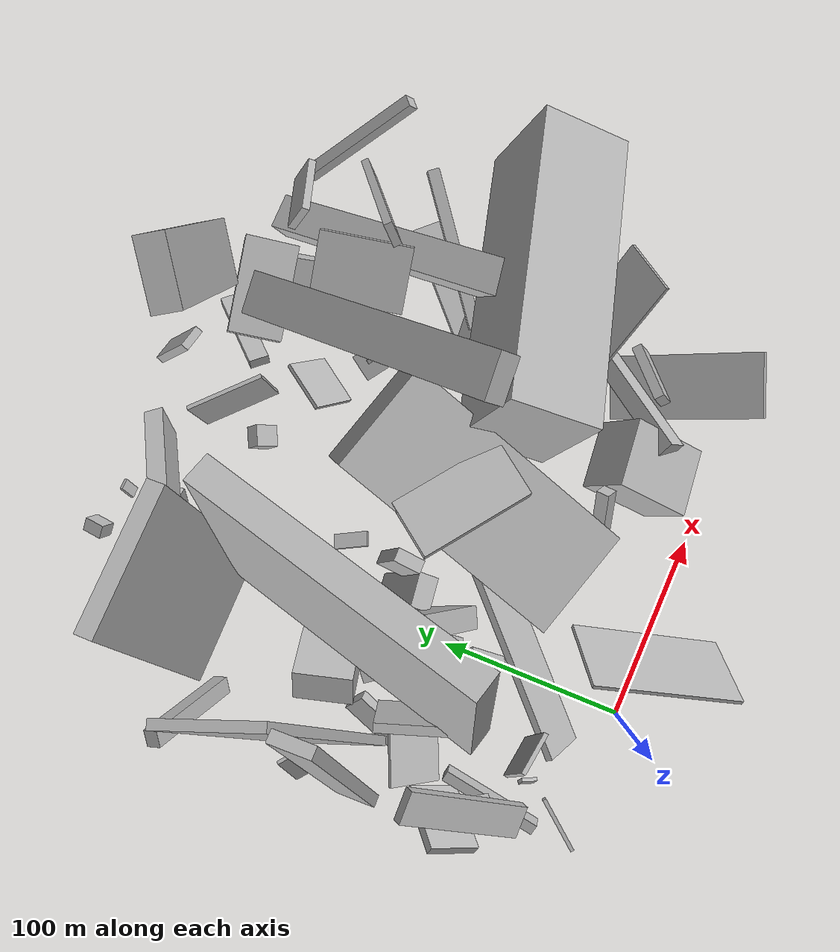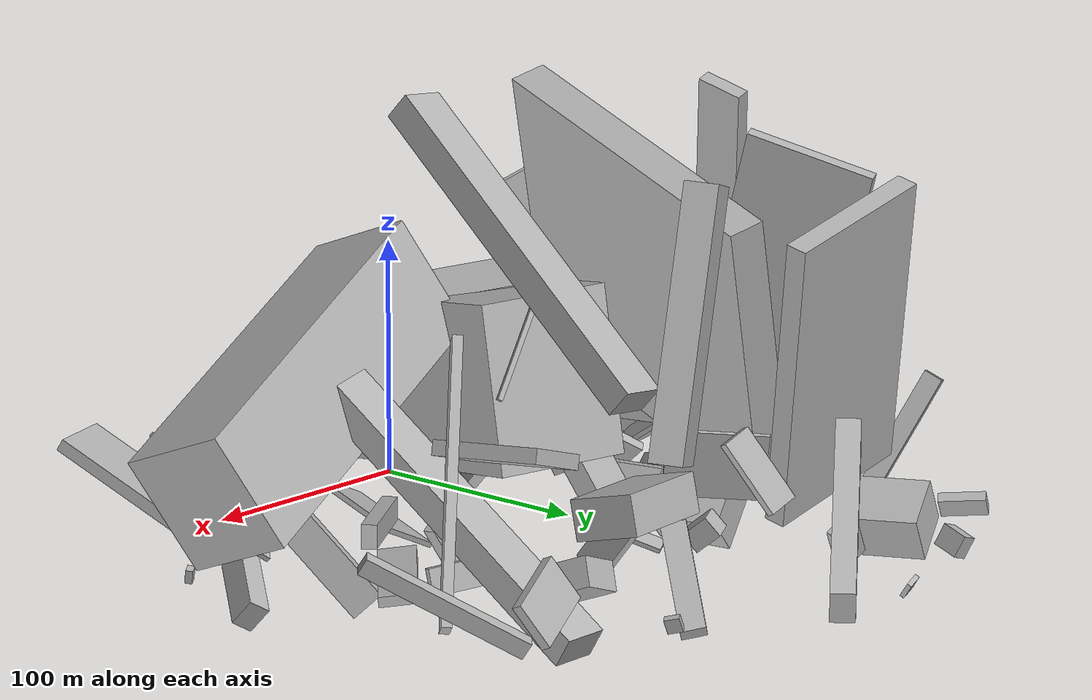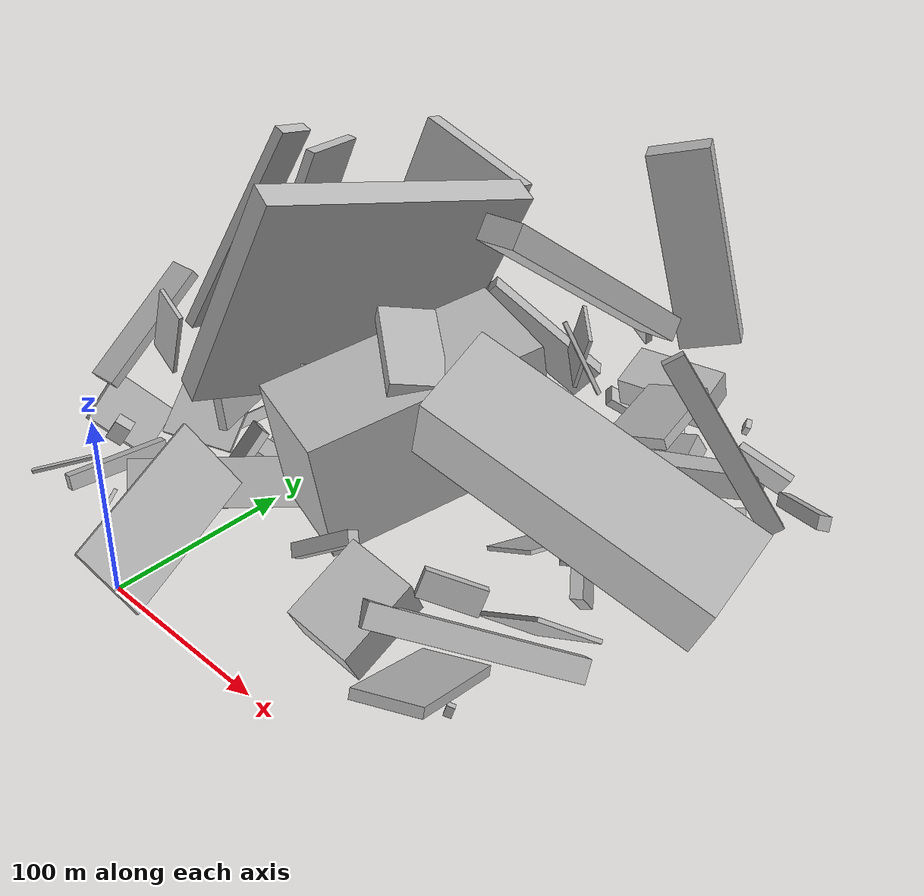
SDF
<sdf version="1.6">
 <world name="default">
  <model name="building_4">
   <static>0</static>
   <pose>-74.45677199136391 207.94244839956997 39.55125357585548 2.6483922736353818 -1.0286559498156338 2.5570631894765388</pose>
   <link name="link">
    <gravity>0</gravity>
    <pose>0 0 4.0 0 0 0</pose>
    <collision name="collision"><geometry><box><size>59 9 8</size></box></geometry></collision>
    <visual name="visual">
     <cast_shadows>0</cast_shadows>
     <geometry><box><size>59 9 8</size></box></geometry>
     <material>
      <script>
       <uri>model://HANNAS_wall/materials/scripts</uri>
       <uri>model://HANNAS_wall/materials/textures</uri>
       <name>vrc/HANNAS_wall</name>
      </script>
     </material>
    </visual>
   </link>
  </model>
  <model name="building_9">
   <static>0</static>
   <pose>17.978054973880703 104.83433261570043 32.83372752502623 0.5673115611624566 -0.05000095545751157 -2.685992951471049</pose>
   <link name="link">
    <gravity>0</gravity>
    <pose>0 0 24.0 0 0 0</pose>
    <collision name="collision"><geometry><box><size>12 31 48</size></box></geometry></collision>
    <visual name="visual">
     <cast_shadows>0</cast_shadows>
     <geometry><box><size>12 31 48</size></box></geometry>
     <material>
      <script>
       <uri>model://HANNAS_wall/materials/scripts</uri>
       <uri>model://HANNAS_wall/materials/textures</uri>
       <name>vrc/HANNAS_wall</name>
      </script>
     </material>
    </visual>
   </link>
  </model>
  <model name="building_10">
   <static>0</static>
   <pose>185.29424632737118 105.88076898427 84.4069443974222 1.178355297755103 -0.36533796081959596 -2.90046888446741</pose>
   <link name="link">
    <gravity>0</gravity>
    <pose>0 0 22.5 0 0 0</pose>
    <collision name="collision"><geometry><box><size>150 50 45</size></box></geometry></collision>
    <visual name="visual">
     <cast_shadows>0</cast_shadows>
     <geometry><box><size>150 50 45</size></box></geometry>
     <material>
      <script>
       <uri>model://HANNAS_wall/materials/scripts</uri>
       <uri>model://HANNAS_wall/materials/textures</uri>
       <name>vrc/HANNAS_wall</name>
      </script>
     </material>
    </visual>
   </link>
  </model>
  <model name="building_12">
   <static>0</static>
   <pose>-67.1942225786789 55.6574327919041 34.76636416632705 1.638907363905264 -1.002846880795218 0.5183612143883055</pose>
   <link name="link">
    <gravity>0</gravity>
    <pose>0 0 3.5 0 0 0</pose>
    <collision name="collision"><geometry><box><size>13 9 7</size></box></geometry></collision>
    <visual name="visual">
     <cast_shadows>0</cast_shadows>
     <geometry><box><size>13 9 7</size></box></geometry>
     <material>
      <script>
       <uri>model://HANNAS_wall/materials/scripts</uri>
       <uri>model://HANNAS_wall/materials/textures</uri>
       <name>vrc/HANNAS_wall</name>
      </script>
     </material>
    </visual>
   </link>
  </model>
  <model name="building_18">
   <static>0</static>
   <pose>172.58470879514888 73.79339232438144 30.630355834477015 2.157927794069207 -0.4387624092834741 -2.2294605914760046</pose>
   <link name="link">
    <gravity>0</gravity>
    <pose>0 0 4.5 0 0 0</pose>
    <collision name="collision"><geometry><box><size>110 12 9</size></box></geometry></collision>
    <visual name="visual">
     <cast_shadows>0</cast_shadows>
     <geometry><box><size>110 12 9</size></box></geometry>
     <material>
      <script>
       <uri>model://HANNAS_wall/materials/scripts</uri>
       <uri>model://HANNAS_wall/materials/textures</uri>
       <name>vrc/HANNAS_wall</name>
      </script>
     </material>
    </visual>
   </link>
  </model>
  <model name="building_20">
   <static>0</static>
   <pose>80.07979476006882 127.824510955347 47.10469755456855 -0.040824752026687484 0.16423273041170286 -1.8767921694358836</pose>
   <link name="link">
    <gravity>0</gravity>
    <pose>0 0 33.5 0 0 0</pose>
    <collision name="collision"><geometry><box><size>120 55 67</size></box></geometry></collision>
    <visual name="visual">
     <cast_shadows>0</cast_shadows>
     <geometry><box><size>120 55 67</size></box></geometry>
     <material>
      <script>
       <uri>model://HANNAS_wall/materials/scripts</uri>
       <uri>model://HANNAS_wall/materials/textures</uri>
       <name>vrc/HANNAS_wall</name>
      </script>
     </material>
    </visual>
   </link>
  </model>
  <model name="building_24">
   <static>0</static>
   <pose>127.57483943052326 185.06371061172996 142.8643766640172 0.1416816433321335 -0.6985751615197036 -1.5987708633046258</pose>
   <link name="link">
    <gravity>0</gravity>
    <pose>0 0 6.0 0 0 0</pose>
    <collision name="collision"><geometry><box><size>150 20 12</size></box></geometry></collision>
    <visual name="visual">
     <cast_shadows>0</cast_shadows>
     <geometry><box><size>150 20 12</size></box></geometry>
     <material>
      <script>
       <uri>model://HANNAS_wall/materials/scripts</uri>
       <uri>model://HANNAS_wall/materials/textures</uri>
       <name>vrc/HANNAS_wall</name>
      </script>
     </material>
    </visual>
   </link>
  </model>
  <model name="building_25">
   <static>0</static>
   <pose>29.72997030836655 131.8980565701181 28.449520393849937 1.0426460473876165 -1.0751715418193473 -0.9791223638475639</pose>
   <link name="link">
    <gravity>0</gravity>
    <pose>0 0 9.0 0 0 0</pose>
    <collision name="collision"><geometry><box><size>41 11 18</size></box></geometry></collision>
    <visual name="visual">
     <cast_shadows>0</cast_shadows>
     <geometry><box><size>41 11 18</size></box></geometry>
     <material>
      <script>
       <uri>model://HANNAS_wall/materials/scripts</uri>
       <uri>model://HANNAS_wall/materials/textures</uri>
       <name>vrc/HANNAS_wall</name>
      </script>
     </material>
    </visual>
   </link>
  </model>
  <model name="building_28">
   <static>0</static>
   <pose>-15.430822300728103 158.05438500108716 29.199407450141297 2.2954427736452394 -0.0484061388359062 -1.2956543786922599</pose>
   <link name="link">
    <gravity>0</gravity>
    <pose>0 0 10.0 0 0 0</pose>
    <collision name="collision"><geometry><box><size>31 51 20</size></box></geometry></collision>
    <visual name="visual">
     <cast_shadows>0</cast_shadows>
     <geometry><box><size>31 51 20</size></box></geometry>
     <material>
      <script>
       <uri>model://HANNAS_wall/materials/scripts</uri>
       <uri>model://HANNAS_wall/materials/textures</uri>
       <name>vrc/HANNAS_wall</name>
      </script>
     </material>
    </visual>
   </link>
  </model>
  <model name="building_33">
   <static>0</static>
   <pose>200.41568147362213 192.89896609704041 27.644120616083498 1.6161998158145225 -1.4615504879100272 -0.8577555704498472</pose>
   <link name="link">
    <gravity>0</gravity>
    <pose>0 0 32.5 0 0 0</pose>
    <collision name="collision"><geometry><box><size>4 15 65</size></box></geometry></collision>
    <visual name="visual">
     <cast_shadows>0</cast_shadows>
     <geometry><box><size>4 15 65</size></box></geometry>
     <material>
      <script>
       <uri>model://HANNAS_wall/materials/scripts</uri>
       <uri>model://HANNAS_wall/materials/textures</uri>
       <name>vrc/HANNAS_wall</name>
      </script>
     </material>
    </visual>
   </link>
  </model>
  <model name="building_41">
   <static>0</static>
   <pose>16.866909825559862 150.28984347591364 106.71477533509268 -0.70087341347727 -1.176562851867607 0.4341626629790535</pose>
   <link name="link">
    <gravity>0</gravity>
    <pose>0 0 7.5 0 0 0</pose>
    <collision name="collision"><geometry><box><size>128 150 15</size></box></geometry></collision>
    <visual name="visual">
     <cast_shadows>0</cast_shadows>
     <geometry><box><size>128 150 15</size></box></geometry>
     <material>
      <script>
       <uri>model://HANNAS_wall/materials/scripts</uri>
       <uri>model://HANNAS_wall/materials/textures</uri>
       <name>vrc/HANNAS_wall</name>
      </script>
     </material>
    </visual>
   </link>
  </model>
  <model name="building_45">
   <static>0</static>
   <pose>-22.747495784544853 27.307556544061146 36.744086166199914 1.511279796984068 -0.8784675674803873 2.382704882822578</pose>
   <link name="link">
    <gravity>0</gravity>
    <pose>0 0 75.0 0 0 0</pose>
    <collision name="collision"><geometry><box><size>25 4 150</size></box></geometry></collision>
    <visual name="visual">
     <cast_shadows>0</cast_shadows>
     <geometry><box><size>25 4 150</size></box></geometry>
     <material>
      <script>
       <uri>model://HANNAS_wall/materials/scripts</uri>
       <uri>model://HANNAS_wall/materials/textures</uri>
       <name>vrc/HANNAS_wall</name>
      </script>
     </material>
    </visual>
   </link>
  </model>
  <model name="building_47">
   <static>0</static>
   <pose>122.16583384751591 50.57232487508045 27.007879287932735 0.48537081636371293 0.21591489810907308 0.07180935491673637</pose>
   <link name="link">
    <gravity>0</gravity>
    <pose>0 0 15.0 0 0 0</pose>
    <collision name="collision"><geometry><box><size>35 43 30</size></box></geometry></collision>
    <visual name="visual">
     <cast_shadows>0</cast_shadows>
     <geometry><box><size>35 43 30</size></box></geometry>
     <material>
      <script>
       <uri>model://HANNAS_wall/materials/scripts</uri>
       <uri>model://HANNAS_wall/materials/textures</uri>
       <name>vrc/HANNAS_wall</name>
      </script>
     </material>
    </visual>
   </link>
  </model>
  <model name="building_48">
   <static>0</static>
   <pose>181.15345760904563 136.98491753784737 28.02272493933745 1.7195432955729344 -0.8248104269505879 -1.059218893279828</pose>
   <link name="link">
    <gravity>0</gravity>
    <pose>0 0 3.0 0 0 0</pose>
    <collision name="collision"><geometry><box><size>48 14 6</size></box></geometry></collision>
    <visual name="visual">
     <cast_shadows>0</cast_shadows>
     <geometry><box><size>48 14 6</size></box></geometry>
     <material>
      <script>
       <uri>model://HANNAS_wall/materials/scripts</uri>
       <uri>model://HANNAS_wall/materials/textures</uri>
       <name>vrc/HANNAS_wall</name>
      </script>
     </material>
    </visual>
   </link>
  </model>
  <model name="building_49">
   <static>0</static>
   <pose>22.213456180696234 231.83362541899422 81.35205831934411 1.334955823161173 -0.2483829394416432 -1.5135354277932942</pose>
   <link name="link">
    <gravity>0</gravity>
    <pose>0 0 35.0 0 0 0</pose>
    <collision name="collision"><geometry><box><size>9 128 70</size></box></geometry></collision>
    <visual name="visual">
     <cast_shadows>0</cast_shadows>
     <geometry><box><size>9 128 70</size></box></geometry>
     <material>
      <script>
       <uri>model://HANNAS_wall/materials/scripts</uri>
       <uri>model://HANNAS_wall/materials/textures</uri>
       <name>vrc/HANNAS_wall</name>
      </script>
     </material>
    </visual>
   </link>
  </model>
  <model name="building_53">
   <static>0</static>
   <pose>76.31578601873169 125.49454528381747 111.59965988581546 -0.13743222430615112 -0.17284348309636652 -2.201991320594714</pose>
   <link name="link">
    <gravity>0</gravity>
    <pose>0 0 4.0 0 0 0</pose>
    <collision name="collision"><geometry><box><size>28 55 8</size></box></geometry></collision>
    <visual name="visual">
     <cast_shadows>0</cast_shadows>
     <geometry><box><size>28 55 8</size></box></geometry>
     <material>
      <script>
       <uri>model://HANNAS_wall/materials/scripts</uri>
       <uri>model://HANNAS_wall/materials/textures</uri>
       <name>vrc/HANNAS_wall</name>
      </script>
     </material>
    </visual>
   </link>
  </model>
  <model name="building_58">
   <static>0</static>
   <pose>142.62874946501347 171.16456678458428 19.824701892713726 -2.612584172810359 1.333517488354918 1.6167786720923487</pose>
   <link name="link">
    <gravity>0</gravity>
    <pose>0 0 2.0 0 0 0</pose>
    <collision name="collision"><geometry><box><size>11 24 4</size></box></geometry></collision>
    <visual name="visual">
     <cast_shadows>0</cast_shadows>
     <geometry><box><size>11 24 4</size></box></geometry>
     <material>
      <script>
       <uri>model://HANNAS_wall/materials/scripts</uri>
       <uri>model://HANNAS_wall/materials/textures</uri>
       <name>vrc/HANNAS_wall</name>
      </script>
     </material>
    </visual>
   </link>
  </model>
  <model name="building_63">
   <static>0</static>
   <pose>140.66141516803472 274.3653076232795 82.76021942558081 -0.2523229151586668 0.08537510222099899 2.117538824825052</pose>
   <link name="link">
    <gravity>0</gravity>
    <pose>0 0 52.0 0 0 0</pose>
    <collision name="collision"><geometry><box><size>13 31 104</size></box></geometry></collision>
    <visual name="visual">
     <cast_shadows>0</cast_shadows>
     <geometry><box><size>13 31 104</size></box></geometry>
     <material>
      <script>
       <uri>model://HANNAS_wall/materials/scripts</uri>
       <uri>model://HANNAS_wall/materials/textures</uri>
       <name>vrc/HANNAS_wall</name>
      </script>
     </material>
    </visual>
   </link>
  </model>
  <model name="building_67">
   <static>0</static>
   <pose>177.93843125018935 197.42043498972842 53.79618180022933 0.5637363992911971 -0.02693423483252306 3.1032364382326003</pose>
   <link name="link">
    <gravity>0</gravity>
    <pose>0 0 6.5 0 0 0</pose>
    <collision name="collision"><geometry><box><size>18 150 13</size></box></geometry></collision>
    <visual name="visual">
     <cast_shadows>0</cast_shadows>
     <geometry><box><size>18 150 13</size></box></geometry>
     <material>
      <script>
       <uri>model://HANNAS_wall/materials/scripts</uri>
       <uri>model://HANNAS_wall/materials/textures</uri>
       <name>vrc/HANNAS_wall</name>
      </script>
     </material>
    </visual>
   </link>
  </model>
  <model name="building_71">
   <static>0</static>
   <pose>-28.0672150231148 135.96927420472363 12.462876970588246 -1.4316008818436576 0.14730811496870616 -2.4634617465286714</pose>
   <link name="link">
    <gravity>0</gravity>
    <pose>0 0 18.0 0 0 0</pose>
    <collision name="collision"><geometry><box><size>9 15 36</size></box></geometry></collision>
    <visual name="visual">
     <cast_shadows>0</cast_shadows>
     <geometry><box><size>9 15 36</size></box></geometry>
     <material>
      <script>
       <uri>model://HANNAS_wall/materials/scripts</uri>
       <uri>model://HANNAS_wall/materials/textures</uri>
       <name>vrc/HANNAS_wall</name>
      </script>
     </material>
    </visual>
   </link>
  </model>
  <model name="building_79">
   <static>0</static>
   <pose>-73.96524555059737 116.63576251349137 68.5299426308236 -0.35551350744754384 -0.27850390243811224 -1.476525956868513</pose>
   <link name="link">
    <gravity>0</gravity>
    <pose>0 0 63.0 0 0 0</pose>
    <collision name="collision"><geometry><box><size>20 6 126</size></box></geometry></collision>
    <visual name="visual">
     <cast_shadows>0</cast_shadows>
     <geometry><box><size>20 6 126</size></box></geometry>
     <material>
      <script>
       <uri>model://HANNAS_wall/materials/scripts</uri>
       <uri>model://HANNAS_wall/materials/textures</uri>
       <name>vrc/HANNAS_wall</name>
      </script>
     </material>
    </visual>
   </link>
  </model>
  <model name="building_95">
   <static>0</static>
   <pose>191.47813155567044 210.86178161394287 72.77714515720285 0.1576625211943519 -1.040219080034761 -2.477074683614082</pose>
   <link name="link">
    <gravity>0</gravity>
    <pose>0 0 5.5 0 0 0</pose>
    <collision name="collision"><geometry><box><size>111 4 11</size></box></geometry></collision>
    <visual name="visual">
     <cast_shadows>0</cast_shadows>
     <geometry><box><size>111 4 11</size></box></geometry>
     <material>
      <script>
       <uri>model://HANNAS_wall/materials/scripts</uri>
       <uri>model://HANNAS_wall/materials/textures</uri>
       <name>vrc/HANNAS_wall</name>
      </script>
     </material>
    </visual>
   </link>
  </model>
  <model name="building_98">
   <static>0</static>
   <pose>-58.26550788957262 160.99075630663714 88.33784600433752 2.307832352170403 -1.1814497285726089 1.221664571650746</pose>
   <link name="link">
    <gravity>0</gravity>
    <pose>0 0 2.5 0 0 0</pose>
    <collision name="collision"><geometry><box><size>150 54 5</size></box></geometry></collision>
    <visual name="visual">
     <cast_shadows>0</cast_shadows>
     <geometry><box><size>150 54 5</size></box></geometry>
     <material>
      <script>
       <uri>model://HANNAS_wall/materials/scripts</uri>
       <uri>model://HANNAS_wall/materials/textures</uri>
       <name>vrc/HANNAS_wall</name>
      </script>
     </material>
    </visual>
   </link>
  </model>
  <model name="building_102">
   <static>0</static>
   <pose>158.60217879960095 216.80560194896097 25.526991181573226 -0.763635601480305 1.0647670362322421 1.024360697192859</pose>
   <link name="link">
    <gravity>0</gravity>
    <pose>0 0 17.5 0 0 0</pose>
    <collision name="collision"><geometry><box><size>12 20 35</size></box></geometry></collision>
    <visual name="visual">
     <cast_shadows>0</cast_shadows>
     <geometry><box><size>12 20 35</size></box></geometry>
     <material>
      <script>
       <uri>model://HANNAS_wall/materials/scripts</uri>
       <uri>model://HANNAS_wall/materials/textures</uri>
       <name>vrc/HANNAS_wall</name>
      </script>
     </material>
    </visual>
   </link>
  </model>
  <model name="building_104">
   <static>0</static>
   <pose>-38.42239977648779 238.74359171529528 26.481152512551926 3.087092438389732 1.0062976572007116 -2.8204837130449025</pose>
   <link name="link">
    <gravity>0</gravity>
    <pose>0 0 11.5 0 0 0</pose>
    <collision name="collision"><geometry><box><size>21 34 23</size></box></geometry></collision>
    <visual name="visual">
     <cast_shadows>0</cast_shadows>
     <geometry><box><size>21 34 23</size></box></geometry>
     <material>
      <script>
       <uri>model://HANNAS_wall/materials/scripts</uri>
       <uri>model://HANNAS_wall/materials/textures</uri>
       <name>vrc/HANNAS_wall</name>
      </script>
     </material>
    </visual>
   </link>
  </model>
  <model name="building_110">
   <static>0</static>
   <pose>29.584455501714135 42.81654095049727 75.42166479050334 2.0504924542064558 0.9082530960068225 0.6187347480305221</pose>
   <link name="link">
    <gravity>0</gravity>
    <pose>0 0 40.0 0 0 0</pose>
    <collision name="collision"><geometry><box><size>40 2 80</size></box></geometry></collision>
    <visual name="visual">
     <cast_shadows>0</cast_shadows>
     <geometry><box><size>40 2 80</size></box></geometry>
     <material>
      <script>
       <uri>model://HANNAS_wall/materials/scripts</uri>
       <uri>model://HANNAS_wall/materials/textures</uri>
       <name>vrc/HANNAS_wall</name>
      </script>
     </material>
    </visual>
   </link>
  </model>
  <model name="building_111">
   <static>0</static>
   <pose>172.00972480435314 55.966356551997876 3.8152570852312087 -1.086731944141119 1.25367329907048 -2.082652135230906</pose>
   <link name="link">
    <gravity>0</gravity>
    <pose>0 0 1.5 0 0 0</pose>
    <collision name="collision"><geometry><box><size>6 4 3</size></box></geometry></collision>
    <visual name="visual">
     <cast_shadows>0</cast_shadows>
     <geometry><box><size>6 4 3</size></box></geometry>
     <material>
      <script>
       <uri>model://HANNAS_wall/materials/scripts</uri>
       <uri>model://HANNAS_wall/materials/textures</uri>
       <name>vrc/HANNAS_wall</name>
      </script>
     </material>
    </visual>
   </link>
  </model>
  <model name="building_118">
   <static>0</static>
   <pose>154.36604198986362 231.12777881606505 79.56000111763167 1.769741825650838 1.2617540657031798 0.391748298018576</pose>
   <link name="link">
    <gravity>0</gravity>
    <pose>0 0 22.5 0 0 0</pose>
    <collision name="collision"><geometry><box><size>6 32 45</size></box></geometry></collision>
    <visual name="visual">
     <cast_shadows>0</cast_shadows>
     <geometry><box><size>6 32 45</size></box></geometry>
     <material>
      <script>
       <uri>model://HANNAS_wall/materials/scripts</uri>
       <uri>model://HANNAS_wall/materials/textures</uri>
       <name>vrc/HANNAS_wall</name>
      </script>
     </material>
    </visual>
   </link>
  </model>
  <model name="building_122">
   <static>0</static>
   <pose>127.37090178505605 192.28651458236428 18.733206770733446 2.2791289783942092 -0.09976116053887334 0.9644824502591155</pose>
   <link name="link">
    <gravity>0</gravity>
    <pose>0 0 1.5 0 0 0</pose>
    <collision name="collision"><geometry><box><size>15 29 3</size></box></geometry></collision>
    <visual name="visual">
     <cast_shadows>0</cast_shadows>
     <geometry><box><size>15 29 3</size></box></geometry>
     <material>
      <script>
       <uri>model://HANNAS_wall/materials/scripts</uri>
       <uri>model://HANNAS_wall/materials/textures</uri>
       <name>vrc/HANNAS_wall</name>
      </script>
     </material>
    </visual>
   </link>
  </model>
  <model name="building_124">
   <static>0</static>
   <pose>135.14424015752206 161.29749996223433 29.423625725459384 1.752077130169929 -0.9825228014205546 -0.071119686003678</pose>
   <link name="link">
    <gravity>0</gravity>
    <pose>0 0 2.5 0 0 0</pose>
    <collision name="collision"><geometry><box><size>25 12 5</size></box></geometry></collision>
    <visual name="visual">
     <cast_shadows>0</cast_shadows>
     <geometry><box><size>25 12 5</size></box></geometry>
     <material>
      <script>
       <uri>model://HANNAS_wall/materials/scripts</uri>
       <uri>model://HANNAS_wall/materials/textures</uri>
       <name>vrc/HANNAS_wall</name>
      </script>
     </material>
    </visual>
   </link>
  </model>
  <model name="building_129">
   <static>0</static>
   <pose>14.774744234106688 287.77366266584534 11.32694236931506 -2.474377477539095 -0.7879935979804941 1.116889905572546</pose>
   <link name="link">
    <gravity>0</gravity>
    <pose>0 0 1.0 0 0 0</pose>
    <collision name="collision"><geometry><box><size>9 6 2</size></box></geometry></collision>
    <visual name="visual">
     <cast_shadows>0</cast_shadows>
     <geometry><box><size>9 6 2</size></box></geometry>
     <material>
      <script>
       <uri>model://HANNAS_wall/materials/scripts</uri>
       <uri>model://HANNAS_wall/materials/textures</uri>
       <name>vrc/HANNAS_wall</name>
      </script>
     </material>
    </visual>
   </link>
  </model>
  <model name="building_131">
   <static>0</static>
   <pose>-6.964942147919858 291.0363460794031 20.731680152498214 0.33111334161604883 0.3014930226637436 -3.0969855689873333</pose>
   <link name="link">
    <gravity>0</gravity>
    <pose>0 0 4.5 0 0 0</pose>
    <collision name="collision"><geometry><box><size>7 11 9</size></box></geometry></collision>
    <visual name="visual">
     <cast_shadows>0</cast_shadows>
     <geometry><box><size>7 11 9</size></box></geometry>
     <material>
      <script>
       <uri>model://HANNAS_wall/materials/scripts</uri>
       <uri>model://HANNAS_wall/materials/textures</uri>
       <name>vrc/HANNAS_wall</name>
      </script>
     </material>
    </visual>
   </link>
  </model>
  <model name="building_132">
   <static>0</static>
   <pose>-55.95782422574153 71.42937279549848 93.71685105991503 0.59026225045079 -0.059474353059551795 0.024820258807333708</pose>
   <link name="link">
    <gravity>0</gravity>
    <pose>0 0 2.5 0 0 0</pose>
    <collision name="collision"><geometry><box><size>16 69 5</size></box></geometry></collision>
    <visual name="visual">
     <cast_shadows>0</cast_shadows>
     <geometry><box><size>16 69 5</size></box></geometry>
     <material>
      <script>
       <uri>model://HANNAS_wall/materials/scripts</uri>
       <uri>model://HANNAS_wall/materials/textures</uri>
       <name>vrc/HANNAS_wall</name>
      </script>
     </material>
    </visual>
   </link>
  </model>
  <model name="building_133">
   <static>0</static>
   <pose>37.18451911980282 169.709125332795 9.924874016628369 -0.9030935407835852 -1.1596016293574856 1.364662078329431</pose>
   <link name="link">
    <gravity>0</gravity>
    <pose>0 0 4.0 0 0 0</pose>
    <collision name="collision"><geometry><box><size>2 19 8</size></box></geometry></collision>
    <visual name="visual">
     <cast_shadows>0</cast_shadows>
     <geometry><box><size>2 19 8</size></box></geometry>
     <material>
      <script>
       <uri>model://HANNAS_wall/materials/scripts</uri>
       <uri>model://HANNAS_wall/materials/textures</uri>
       <name>vrc/HANNAS_wall</name>
      </script>
     </material>
    </visual>
   </link>
  </model>
  <model name="building_135">
   <static>0</static>
   <pose>173.9592742359445 36.92599736776648 31.869016696611276 0.06055195949369374 -0.5188397882889274 -1.2083799321410957</pose>
   <link name="link">
    <gravity>0</gravity>
    <pose>0 0 2.5 0 0 0</pose>
    <collision name="collision"><geometry><box><size>80 33 5</size></box></geometry></collision>
    <visual name="visual">
     <cast_shadows>0</cast_shadows>
     <geometry><box><size>80 33 5</size></box></geometry>
     <material>
      <script>
       <uri>model://HANNAS_wall/materials/scripts</uri>
       <uri>model://HANNAS_wall/materials/textures</uri>
       <name>vrc/HANNAS_wall</name>
      </script>
     </material>
    </visual>
   </link>
  </model>
  <model name="building_137">
   <static>0</static>
   <pose>-86.28929797232752 151.13985929168143 20.5231931151856 -0.0059665619857931255 -0.9183296484541912 0.8995920843196935</pose>
   <link name="link">
    <gravity>0</gravity>
    <pose>0 0 1.0 0 0 0</pose>
    <collision name="collision"><geometry><box><size>25 9 2</size></box></geometry></collision>
    <visual name="visual">
     <cast_shadows>0</cast_shadows>
     <geometry><box><size>25 9 2</size></box></geometry>
     <material>
      <script>
       <uri>model://HANNAS_wall/materials/scripts</uri>
       <uri>model://HANNAS_wall/materials/textures</uri>
       <name>vrc/HANNAS_wall</name>
      </script>
     </material>
    </visual>
   </link>
  </model>
  <model name="building_138">
   <static>0</static>
   <pose>-22.669271255501535 57.368958870368466 97.17546499620553 0.035152694113729704 -0.3122316358242787 2.951330400045667</pose>
   <link name="link">
    <gravity>0</gravity>
    <pose>0 0 19.0 0 0 0</pose>
    <collision name="collision"><geometry><box><size>20 2 38</size></box></geometry></collision>
    <visual name="visual">
     <cast_shadows>0</cast_shadows>
     <geometry><box><size>20 2 38</size></box></geometry>
     <material>
      <script>
       <uri>model://HANNAS_wall/materials/scripts</uri>
       <uri>model://HANNAS_wall/materials/textures</uri>
       <name>vrc/HANNAS_wall</name>
      </script>
     </material>
    </visual>
   </link>
  </model>
  <model name="building_145">
   <static>0</static>
   <pose>93.0704823970939 57.569512409484545 49.78629884559239 0.9021403586719605 -0.5647430056557935 0.33334688902199877</pose>
   <link name="link">
    <gravity>0</gravity>
    <pose>0 0 3.5 0 0 0</pose>
    <collision name="collision"><geometry><box><size>36 7 7</size></box></geometry></collision>
    <visual name="visual">
     <cast_shadows>0</cast_shadows>
     <geometry><box><size>36 7 7</size></box></geometry>
     <material>
      <script>
       <uri>model://HANNAS_wall/materials/scripts</uri>
       <uri>model://HANNAS_wall/materials/textures</uri>
       <name>vrc/HANNAS_wall</name>
      </script>
     </material>
    </visual>
   </link>
  </model>
  <model name="building_153">
   <static>0</static>
   <pose>-82.84281024024699 69.73752908969819 27.299172798465236 -0.7877456409856033 -0.7457665976927661 -2.3397569554361466</pose>
   <link name="link">
    <gravity>0</gravity>
    <pose>0 0 2.5 0 0 0</pose>
    <collision name="collision"><geometry><box><size>37 29 5</size></box></geometry></collision>
    <visual name="visual">
     <cast_shadows>0</cast_shadows>
     <geometry><box><size>37 29 5</size></box></geometry>
     <material>
      <script>
       <uri>model://HANNAS_wall/materials/scripts</uri>
       <uri>model://HANNAS_wall/materials/textures</uri>
       <name>vrc/HANNAS_wall</name>
      </script>
     </material>
    </visual>
   </link>
  </model>
  <model name="building_157">
   <static>0</static>
   <pose>137.51783157296768 240.08978185300202 58.68619147422044 0.21166265260986855 -1.3489898826243099 -1.5886974132074223</pose>
   <link name="link">
    <gravity>0</gravity>
    <pose>0 0 13.0 0 0 0</pose>
    <collision name="collision"><geometry><box><size>16 47 26</size></box></geometry></collision>
    <visual name="visual">
     <cast_shadows>0</cast_shadows>
     <geometry><box><size>16 47 26</size></box></geometry>
     <material>
      <script>
       <uri>model://HANNAS_wall/materials/scripts</uri>
       <uri>model://HANNAS_wall/materials/textures</uri>
       <name>vrc/HANNAS_wall</name>
      </script>
     </material>
    </visual>
   </link>
  </model>
  <model name="building_161">
   <static>0</static>
   <pose>-52.56941274279409 262.8658367969876 26.603961525612657 -2.3643423249243676 0.08235751796968994 -1.0017237465162034</pose>
   <link name="link">
    <gravity>0</gravity>
    <pose>0 0 2.0 0 0 0</pose>
    <collision name="collision"><geometry><box><size>19 12 4</size></box></geometry></collision>
    <visual name="visual">
     <cast_shadows>0</cast_shadows>
     <geometry><box><size>19 12 4</size></box></geometry>
     <material>
      <script>
       <uri>model://HANNAS_wall/materials/scripts</uri>
       <uri>model://HANNAS_wall/materials/textures</uri>
       <name>vrc/HANNAS_wall</name>
      </script>
     </material>
    </visual>
   </link>
  </model>
  <model name="building_162">
   <static>0</static>
   <pose>-35.58922403453748 104.56071815340984 53.23025689385538 1.4522322126698812 0.02430142427671433 1.9013200339113963</pose>
   <link name="link">
    <gravity>0</gravity>
    <pose>0 0 2.5 0 0 0</pose>
    <collision name="collision"><geometry><box><size>36 35 5</size></box></geometry></collision>
    <visual name="visual">
     <cast_shadows>0</cast_shadows>
     <geometry><box><size>36 35 5</size></box></geometry>
     <material>
      <script>
       <uri>model://HANNAS_wall/materials/scripts</uri>
       <uri>model://HANNAS_wall/materials/textures</uri>
       <name>vrc/HANNAS_wall</name>
      </script>
     </material>
    </visual>
   </link>
  </model>
  <model name="building_170">
   <static>0</static>
   <pose>-49.23560458235937 32.87252056257068 9.228078094009359 0.9730755947869796 0.5588010124034462 -1.2945314831208612</pose>
   <link name="link">
    <gravity>0</gravity>
    <pose>0 0 1.0 0 0 0</pose>
    <collision name="collision"><geometry><box><size>10 4 2</size></box></geometry></collision>
    <visual name="visual">
     <cast_shadows>0</cast_shadows>
     <geometry><box><size>10 4 2</size></box></geometry>
     <material>
      <script>
       <uri>model://HANNAS_wall/materials/scripts</uri>
       <uri>model://HANNAS_wall/materials/textures</uri>
       <name>vrc/HANNAS_wall</name>
      </script>
     </material>
    </visual>
   </link>
  </model>
  <model name="building_172">
   <static>0</static>
   <pose>118.34495990379946 255.87942859686572 29.058810947473685 1.2251025160827154 0.8976612717627757 -2.682408655615247</pose>
   <link name="link">
    <gravity>0</gravity>
    <pose>0 0 5.0 0 0 0</pose>
    <collision name="collision"><geometry><box><size>5 51 10</size></box></geometry></collision>
    <visual name="visual">
     <cast_shadows>0</cast_shadows>
     <geometry><box><size>5 51 10</size></box></geometry>
     <material>
      <script>
       <uri>model://HANNAS_wall/materials/scripts</uri>
       <uri>model://HANNAS_wall/materials/textures</uri>
       <name>vrc/HANNAS_wall</name>
      </script>
     </material>
    </visual>
   </link>
  </model>
  <model name="building_175">
   <static>0</static>
   <pose>158.6387697475199 149.44948378353965 46.192171249937395 -0.011693798764372576 -1.4266919822079533 -2.471287076621076</pose>
   <link name="link">
    <gravity>0</gravity>
    <pose>0 0 40.0 0 0 0</pose>
    <collision name="collision"><geometry><box><size>9 6 80</size></box></geometry></collision>
    <visual name="visual">
     <cast_shadows>0</cast_shadows>
     <geometry><box><size>9 6 80</size></box></geometry>
     <material>
      <script>
       <uri>model://HANNAS_wall/materials/scripts</uri>
       <uri>model://HANNAS_wall/materials/textures</uri>
       <name>vrc/HANNAS_wall</name>
      </script>
     </material>
    </visual>
   </link>
  </model>
  <model name="building_179">
   <static>0</static>
   <pose>157.11514881919544 52.51072264492118 71.2238784949037 2.4224185978039103 -1.06724967337274 1.508113571614433</pose>
   <link name="link">
    <gravity>0</gravity>
    <pose>0 0 14.5 0 0 0</pose>
    <collision name="collision"><geometry><box><size>13 5 29</size></box></geometry></collision>
    <visual name="visual">
     <cast_shadows>0</cast_shadows>
     <geometry><box><size>13 5 29</size></box></geometry>
     <material>
      <script>
       <uri>model://HANNAS_wall/materials/scripts</uri>
       <uri>model://HANNAS_wall/materials/textures</uri>
       <name>vrc/HANNAS_wall</name>
      </script>
     </material>
    </visual>
   </link>
  </model>
  <model name="building_191">
   <static>0</static>
   <pose>-46.05606951226053 112.20081835550334 17.10424153830922 2.721715523702545 -0.9114601127842122 3.0721270357107713</pose>
   <link name="link">
    <gravity>0</gravity>
    <pose>0 0 6.5 0 0 0</pose>
    <collision name="collision"><geometry><box><size>6 43 13</size></box></geometry></collision>
    <visual name="visual">
     <cast_shadows>0</cast_shadows>
     <geometry><box><size>6 43 13</size></box></geometry>
     <material>
      <script>
       <uri>model://HANNAS_wall/materials/scripts</uri>
       <uri>model://HANNAS_wall/materials/textures</uri>
       <name>vrc/HANNAS_wall</name>
      </script>
     </material>
    </visual>
   </link>
  </model>
  <model name="building_195">
   <static>0</static>
   <pose>62.57055244927072 227.1644779181416 33.78620221707235 1.7372925635726306 0.870299174675997 2.1629520150495303</pose>
   <link name="link">
    <gravity>0</gravity>
    <pose>0 0 5.5 0 0 0</pose>
    <collision name="collision"><geometry><box><size>9 12 11</size></box></geometry></collision>
    <visual name="visual">
     <cast_shadows>0</cast_shadows>
     <geometry><box><size>9 12 11</size></box></geometry>
     <material>
      <script>
       <uri>model://HANNAS_wall/materials/scripts</uri>
       <uri>model://HANNAS_wall/materials/textures</uri>
       <name>vrc/HANNAS_wall</name>
      </script>
     </material>
    </visual>
   </link>
  </model>
  <model name="building_201">
   <static>0</static>
   <pose>-69.7810643973324 20.88128084136909 15.468957406075441 1.596532584880634 -1.2984179307431614 2.9552386641633257</pose>
   <link name="link">
    <gravity>0</gravity>
    <pose>0 0 27.5 0 0 0</pose>
    <collision name="collision"><geometry><box><size>8 6 55</size></box></geometry></collision>
    <visual name="visual">
     <cast_shadows>0</cast_shadows>
     <geometry><box><size>8 6 55</size></box></geometry>
     <material>
      <script>
       <uri>model://HANNAS_wall/materials/scripts</uri>
       <uri>model://HANNAS_wall/materials/textures</uri>
       <name>vrc/HANNAS_wall</name>
      </script>
     </material>
    </visual>
   </link>
  </model>
  <model name="building_205">
   <static>0</static>
   <pose>-1.7140426517017366 103.91448526676409 29.607130474935275 2.7844448518422364 -1.1182009747837753 -1.1069647612223665</pose>
   <link name="link">
    <gravity>0</gravity>
    <pose>0 0 4.5 0 0 0</pose>
    <collision name="collision"><geometry><box><size>13 21 9</size></box></geometry></collision>
    <visual name="visual">
     <cast_shadows>0</cast_shadows>
     <geometry><box><size>13 21 9</size></box></geometry>
     <material>
      <script>
       <uri>model://HANNAS_wall/materials/scripts</uri>
       <uri>model://HANNAS_wall/materials/textures</uri>
       <name>vrc/HANNAS_wall</name>
      </script>
     </material>
    </visual>
   </link>
  </model>
  <model name="building_209">
   <static>0</static>
   <pose>139.89944405484968 134.57479816817772 34.76389722378049 1.115364270240014 0.28334486028007144 1.4908979575058534</pose>
   <link name="link">
    <gravity>0</gravity>
    <pose>0 0 14.0 0 0 0</pose>
    <collision name="collision"><geometry><box><size>43 2 28</size></box></geometry></collision>
    <visual name="visual">
     <cast_shadows>0</cast_shadows>
     <geometry><box><size>43 2 28</size></box></geometry>
     <material>
      <script>
       <uri>model://HANNAS_wall/materials/scripts</uri>
       <uri>model://HANNAS_wall/materials/textures</uri>
       <name>vrc/HANNAS_wall</name>
      </script>
     </material>
    </visual>
   </link>
  </model>
  <model name="building_211">
   <static>0</static>
   <pose>-48.63446071544006 26.788009971264685 40.37883876817148 1.787576334436888 0.05238852498072779 -0.6829280792600809</pose>
   <link name="link">
    <gravity>0</gravity>
    <pose>0 0 16.5 0 0 0</pose>
    <collision name="collision"><geometry><box><size>2 2 33</size></box></geometry></collision>
    <visual name="visual">
     <cast_shadows>0</cast_shadows>
     <geometry><box><size>2 2 33</size></box></geometry>
     <material>
      <script>
       <uri>model://HANNAS_wall/materials/scripts</uri>
       <uri>model://HANNAS_wall/materials/textures</uri>
       <name>vrc/HANNAS_wall</name>
      </script>
     </material>
    </visual>
   </link>
  </model>
  <model name="building_212">
   <static>0</static>
   <pose>94.90056659688896 279.5529769285949 71.94787768960106 2.300531826544471 -0.9662010099123978 -0.9997467832102653</pose>
   <link name="link">
    <gravity>0</gravity>
    <pose>0 0 2.0 0 0 0</pose>
    <collision name="collision"><geometry><box><size>32 12 4</size></box></geometry></collision>
    <visual name="visual">
     <cast_shadows>0</cast_shadows>
     <geometry><box><size>32 12 4</size></box></geometry>
     <material>
      <script>
       <uri>model://HANNAS_wall/materials/scripts</uri>
       <uri>model://HANNAS_wall/materials/textures</uri>
       <name>vrc/HANNAS_wall</name>
      </script>
     </material>
    </visual>
   </link>
  </model>
  <model name="building_215">
   <static>0</static>
   <pose>193.1462535522622 88.12865649763786 46.76484900487064 2.4052742409071075 0.5129088314830899 0.8963393083231108</pose>
   <link name="link">
    <gravity>0</gravity>
    <pose>0 0 1.0 0 0 0</pose>
    <collision name="collision"><geometry><box><size>32 59 2</size></box></geometry></collision>
    <visual name="visual">
     <cast_shadows>0</cast_shadows>
     <geometry><box><size>32 59 2</size></box></geometry>
     <material>
      <script>
       <uri>model://HANNAS_wall/materials/scripts</uri>
       <uri>model://HANNAS_wall/materials/textures</uri>
       <name>vrc/HANNAS_wall</name>
      </script>
     </material>
    </visual>
   </link>
  </model>
  <model name="building_220">
   <static>0</static>
   <pose>127.69104633830219 187.46977683346907 106.8216132277501 -0.6022546495485287 -0.9703027726599753 -3.032289256335875</pose>
   <link name="link">
    <gravity>0</gravity>
    <pose>0 0 1.0 0 0 0</pose>
    <collision name="collision"><geometry><box><size>38 2 2</size></box></geometry></collision>
    <visual name="visual">
     <cast_shadows>0</cast_shadows>
     <geometry><box><size>38 2 2</size></box></geometry>
     <material>
      <script>
       <uri>model://HANNAS_wall/materials/scripts</uri>
       <uri>model://HANNAS_wall/materials/textures</uri>
       <name>vrc/HANNAS_wall</name>
      </script>
     </material>
    </visual>
   </link>
  </model>
  <model name="building_228">
   <static>0</static>
   <pose>34.59665773325516 272.51435050149695 44.535214392142365 -3.1308215956009975 -0.7225351020879539 -2.491790583008157</pose>
   <link name="link">
    <gravity>0</gravity>
    <pose>0 0 10.5 0 0 0</pose>
    <collision name="collision"><geometry><box><size>80 10 21</size></box></geometry></collision>
    <visual name="visual">
     <cast_shadows>0</cast_shadows>
     <geometry><box><size>80 10 21</size></box></geometry>
     <material>
      <script>
       <uri>model://HANNAS_wall/materials/scripts</uri>
       <uri>model://HANNAS_wall/materials/textures</uri>
       <name>vrc/HANNAS_wall</name>
      </script>
     </material>
    </visual>
   </link>
  </model>
  <model name="building_235">
   <static>0</static>
   <pose>-11.128484502265902 83.83620380198003 23.439445270330026 0.649724478767953 -0.6043827933913254 -2.530412109768773</pose>
   <link name="link">
    <gravity>0</gravity>
    <pose>0 0 12.0 0 0 0</pose>
    <collision name="collision"><geometry><box><size>4 54 24</size></box></geometry></collision>
    <visual name="visual">
     <cast_shadows>0</cast_shadows>
     <geometry><box><size>4 54 24</size></box></geometry>
     <material>
      <script>
       <uri>model://HANNAS_wall/materials/scripts</uri>
       <uri>model://HANNAS_wall/materials/textures</uri>
       <name>vrc/HANNAS_wall</name>
      </script>
     </material>
    </visual>
   </link>
  </model>
  <model name="building_237">
   <static>0</static>
   <pose>203.4988502379271 259.91037665312933 23.680954358533903 0.3677018108125073 -1.009208714979845 1.9911812027352382</pose>
   <link name="link">
    <gravity>0</gravity>
    <pose>0 0 34.5 0 0 0</pose>
    <collision name="collision"><geometry><box><size>7 6 69</size></box></geometry></collision>
    <visual name="visual">
     <cast_shadows>0</cast_shadows>
     <geometry><box><size>7 6 69</size></box></geometry>
     <material>
      <script>
       <uri>model://HANNAS_wall/materials/scripts</uri>
       <uri>model://HANNAS_wall/materials/textures</uri>
       <name>vrc/HANNAS_wall</name>
      </script>
     </material>
    </visual>
   </link>
  </model>
  <model name="building_238">
   <static>0</static>
   <pose>32.9140045844989 139.85665075889798 54.315077185705874 2.33503257998217 1.1440104323553604 2.2738427537682813</pose>
   <link name="link">
    <gravity>0</gravity>
    <pose>0 0 3.5 0 0 0</pose>
    <collision name="collision"><geometry><box><size>24 15 7</size></box></geometry></collision>
    <visual name="visual">
     <cast_shadows>0</cast_shadows>
     <geometry><box><size>24 15 7</size></box></geometry>
     <material>
      <script>
       <uri>model://HANNAS_wall/materials/scripts</uri>
       <uri>model://HANNAS_wall/materials/textures</uri>
       <name>vrc/HANNAS_wall</name>
      </script>
     </material>
    </visual>
   </link>
  </model>
  <model name="building_239">
   <static>0</static>
   <pose>-51.388815590351314 98.02670698253343 26.75081305311953 0.08360253613011347 -0.6074138604249507 1.9345843336456527</pose>
   <link name="link">
    <gravity>0</gravity>
    <pose>0 0 1.0 0 0 0</pose>
    <collision name="collision"><geometry><box><size>30 40 2</size></box></geometry></collision>
    <visual name="visual">
     <cast_shadows>0</cast_shadows>
     <geometry><box><size>30 40 2</size></box></geometry>
     <material>
      <script>
       <uri>model://HANNAS_wall/materials/scripts</uri>
       <uri>model://HANNAS_wall/materials/textures</uri>
       <name>vrc/HANNAS_wall</name>
      </script>
     </material>
    </visual>
   </link>
  </model>
  <model name="building_240">
   <static>0</static>
   <pose>194.41640110192773 254.08082906083803 45.63912350425306 2.7090723999596866 0.41464549606019463 -1.4458899510658523</pose>
   <link name="link">
    <gravity>0</gravity>
    <pose>0 0 10.0 0 0 0</pose>
    <collision name="collision"><geometry><box><size>4 30 20</size></box></geometry></collision>
    <visual name="visual">
     <cast_shadows>0</cast_shadows>
     <geometry><box><size>4 30 20</size></box></geometry>
     <material>
      <script>
       <uri>model://HANNAS_wall/materials/scripts</uri>
       <uri>model://HANNAS_wall/materials/textures</uri>
       <name>vrc/HANNAS_wall</name>
      </script>
     </material>
    </visual>
   </link>
  </model>
  <model name="building_241">
   <static>0</static>
   <pose>109.42296211121352 206.52811061784803 21.366033528413084 -0.5995676556927655 0.1821807849770405 0.970607481836659</pose>
   <link name="link">
    <gravity>0</gravity>
    <pose>0 0 14.0 0 0 0</pose>
    <collision name="collision"><geometry><box><size>27 2 28</size></box></geometry></collision>
    <visual name="visual">
     <cast_shadows>0</cast_shadows>
     <geometry><box><size>27 2 28</size></box></geometry>
     <material>
      <script>
       <uri>model://HANNAS_wall/materials/scripts</uri>
       <uri>model://HANNAS_wall/materials/textures</uri>
       <name>vrc/HANNAS_wall</name>
      </script>
     </material>
    </visual>
   </link>
  </model>
  <model name="building_252">
   <static>0</static>
   <pose>19.955805505729487 255.6010086467091 18.288707263714432 -0.4152083172086512 -0.9323366708263409 0.37141754626652407</pose>
   <link name="link">
    <gravity>0</gravity>
    <pose>0 0 7.5 0 0 0</pose>
    <collision name="collision"><geometry><box><size>26 2 15</size></box></geometry></collision>
    <visual name="visual">
     <cast_shadows>0</cast_shadows>
     <geometry><box><size>26 2 15</size></box></geometry>
     <material>
      <script>
       <uri>model://HANNAS_wall/materials/scripts</uri>
       <uri>model://HANNAS_wall/materials/textures</uri>
       <name>vrc/HANNAS_wall</name>
      </script>
     </material>
    </visual>
   </link>
  </model>
  <model name="building_253">
   <static>0</static>
   <pose>77.85466151909574 241.75295842711034 51.16881956550302 0.07388654596925108 -0.2503782321867711 -2.372260869640383</pose>
   <link name="link">
    <gravity>0</gravity>
    <pose>0 0 14.0 0 0 0</pose>
    <collision name="collision"><geometry><box><size>2 39 28</size></box></geometry></collision>
    <visual name="visual">
     <cast_shadows>0</cast_shadows>
     <geometry><box><size>2 39 28</size></box></geometry>
     <material>
      <script>
       <uri>model://HANNAS_wall/materials/scripts</uri>
       <uri>model://HANNAS_wall/materials/textures</uri>
       <name>vrc/HANNAS_wall</name>
      </script>
     </material>
    </visual>
   </link>
  </model>
  <model name="building_260">
   <static>0</static>
   <pose>156.35044146115115 293.5327238738629 29.530672662578723 2.2275034568055347 -1.1811459562483337 -0.11363365061592529</pose>
   <link name="link">
    <gravity>0</gravity>
    <pose>0 0 3.0 0 0 0</pose>
    <collision name="collision"><geometry><box><size>6 3 6</size></box></geometry></collision>
    <visual name="visual">
     <cast_shadows>0</cast_shadows>
     <geometry><box><size>6 3 6</size></box></geometry>
     <material>
      <script>
       <uri>model://HANNAS_wall/materials/scripts</uri>
       <uri>model://HANNAS_wall/materials/textures</uri>
       <name>vrc/HANNAS_wall</name>
      </script>
     </material>
    </visual>
   </link>
  </model>
 </world>
</sdf>
